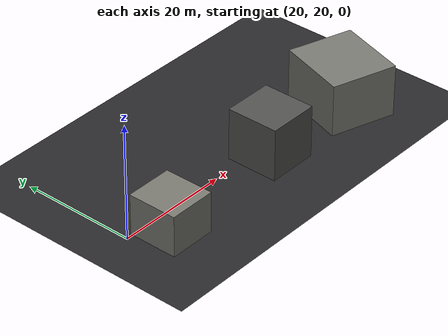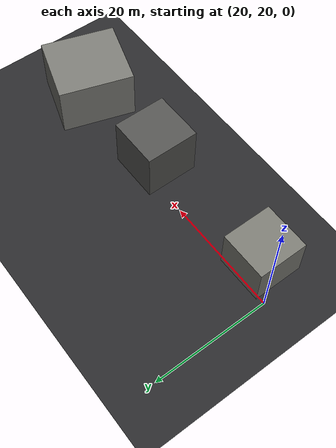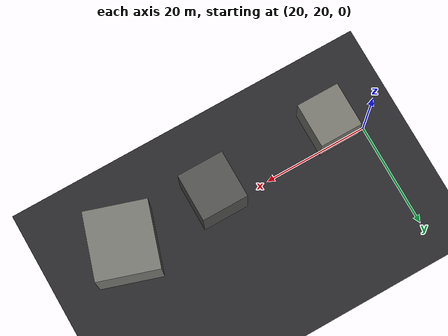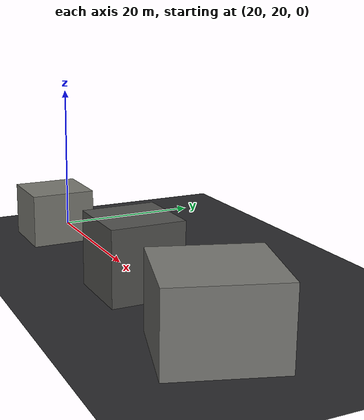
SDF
<sdf version="1.7">
 <world name="urban_tight">
  <model name="ground">
   <static>true</static>
   <pose>59.5 -62.5 0 0 0 0</pose>
   <link name="l">
    <collision name="c"><geometry><plane><normal>0 0 1</normal><size>179 185</size></plane></geometry></collision>
    <visual name="v">
     <geometry><plane><normal>0 0 1</normal><size>179 185</size></plane></geometry>
     <material><ambient>0.16 0.16 0.17 1</ambient><diffuse>0.16 0.16 0.17 1</diffuse></material>
    </visual>
   </link>
  </model>
  <model name="bldg_02">
   <static>true</static>
   <pose>25.304 16.189 3.547 0 0 0.0000</pose>
   <link name="l">
    <collision name="c"><geometry><box><size>8.191 8.562 7.094</size></box></geometry></collision>
    <visual name="v">
     <geometry><box><size>8.191 8.562 7.094</size></box></geometry>
     <material><ambient>0.47 0.47 0.44 1</ambient><diffuse>0.47 0.47 0.44 1</diffuse></material>
    </visual>
   </link>
  </model>
  <model name="bldg_13">
   <static>true</static>
   <pose>49.744 17.548 4.582 0 0 0.0000</pose>
   <link name="l">
    <collision name="c"><geometry><box><size>8.841 9.101 9.164</size></box></geometry></collision>
    <visual name="v">
     <geometry><box><size>8.841 9.101 9.164</size></box></geometry>
     <material><ambient>0.32 0.32 0.31 1</ambient><diffuse>0.32 0.32 0.31 1</diffuse></material>
    </visual>
   </link>
  </model>
  <model name="bldg_17">
   <static>true</static>
   <pose>68.075 18.078 4.549 0 0 -0.3115</pose>
   <link name="l">
    <collision name="c"><geometry><box><size>11.668 12.611 9.099</size></box></geometry></collision>
    <visual name="v">
     <geometry><box><size>11.668 12.611 9.099</size></box></geometry>
     <material><ambient>0.47 0.47 0.45 1</ambient><diffuse>0.47 0.47 0.45 1</diffuse></material>
    </visual>
   </link>
  </model>
 </world>
</sdf>
